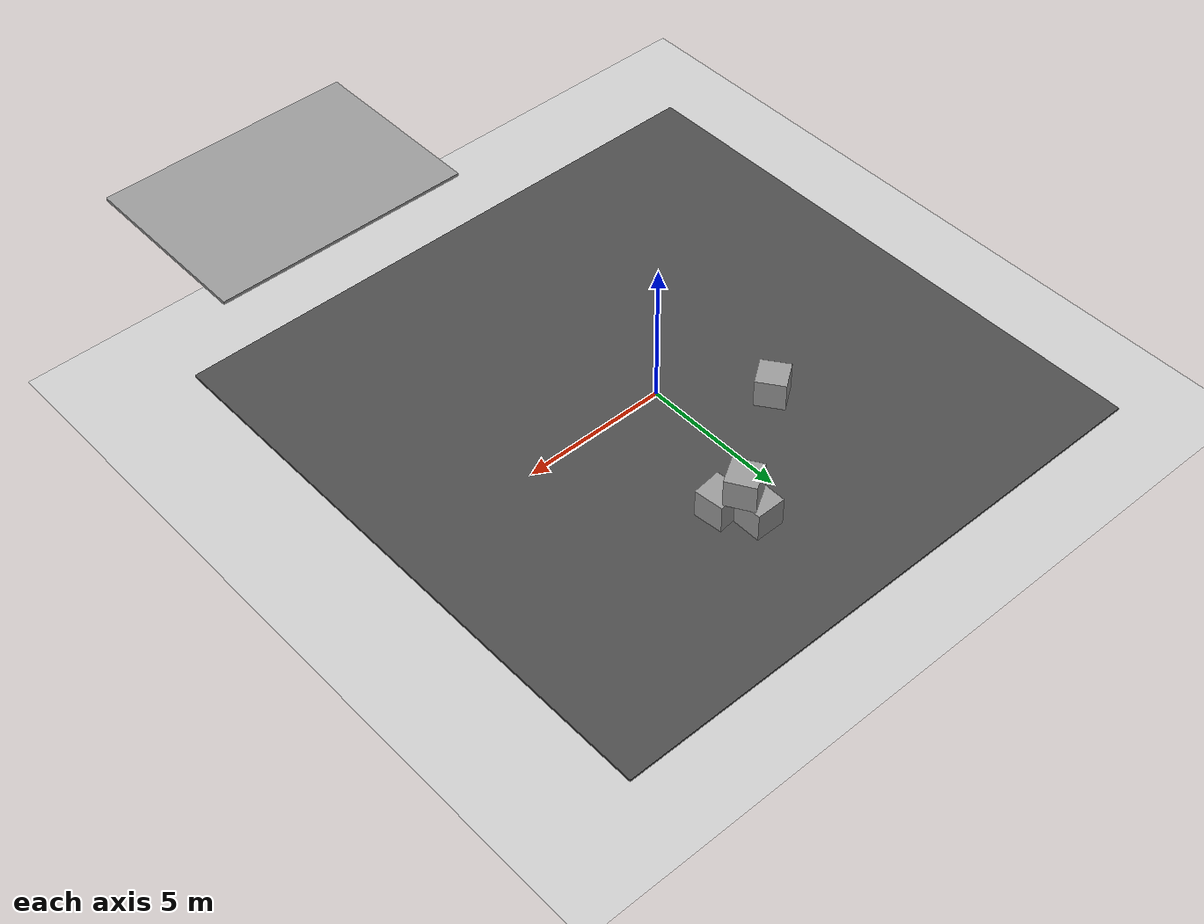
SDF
<sdf version="1.6">
 <world name="default">
  <model name="ground_plane">
   <static>1</static>
   <link name="link">
    <collision name="collision">
     <geometry><plane><normal>0 0 1</normal><size>100 100</size></plane></geometry>
     <surface><friction><ode><mu>100</mu><mu2>50</mu2></ode></friction></surface>
    </collision>
    <visual name="visual">
     <cast_shadows>0</cast_shadows>
     <geometry><plane><normal>0 0 1</normal><size>100 100</size></plane></geometry>
     <material>
      <script><uri>file://media/materials/scripts/gazebo.material</uri><name>Gazebo/Grey</name></script>
     </material>
    </visual>
   </link>
  </model>
  <model name="asphalt_plane">
   <static>1</static>
   <link name="link">
    <collision name="collision"><geometry><box><size>20 20 0.1</size></box></geometry></collision>
    <visual name="visual">
     <cast_shadows>0</cast_shadows>
     <geometry><box><size>20 20 0.1</size></box></geometry>
     <material>
      <script>
       <uri>model://asphalt_plane/materials/scripts</uri>
       <uri>model://asphalt_plane/materials/textures</uri>
       <name>vrc/asphalt</name>
      </script>
     </material>
    </visual>
   </link>
   <pose>0.058806 -0.094526 0 0 -0 0</pose>
  </model>
  <model name="simple_plane">
   <static>1</static>
   <link name="link">
    <collision name="collision"><geometry><box><size>8.02916 5.80556 0.1</size></box></geometry></collision>
    <visual name="visual">
     <cast_shadows>0</cast_shadows>
     <geometry><box><size>8.02916 5.80556 0.1</size></box></geometry>
     <material>
      <script><uri>file://media/materials/scripts/gazebo.material</uri><name>Gazebo/Grey</name></script>
     </material>
    </visual>
   </link>
   <pose>7.30034 -7.79717 7.45488 0 -0 0</pose>
  </model>
  <model name="unit_box_0">
   <pose>-2.49229 2.46601 0.55 0 -0 0.619039</pose>
   <link name="link">
    <inertial>
     <mass>1</mass>
     <inertia>
      <ixx>0.166667</ixx>
      <ixy>0</ixy>
      <ixz>0</ixz>
      <iyy>0.166667</iyy>
      <iyz>0</iyz>
      <izz>0.166667</izz>
     </inertia>
    </inertial>
    <collision name="collision"><geometry><box><size>1 1 1</size></box></geometry></collision>
    <visual name="visual">
     <geometry><box><size>1 1 1</size></box></geometry>
     <material>
      <script><name>Gazebo/Grey</name><uri>file://media/materials/scripts/gazebo.material</uri></script>
     </material>
    </visual>
   </link>
  </model>
  <model name="unit_box_2">
   <pose>2.01441 4.81675 0.549875 -1.8e-05 3e-06 0.110981</pose>
   <link name="link">
    <inertial>
     <mass>1</mass>
     <inertia>
      <ixx>0.166667</ixx>
      <ixy>0</ixy>
      <ixz>0</ixz>
      <iyy>0.166667</iyy>
      <iyz>0</iyz>
      <izz>0.166667</izz>
     </inertia>
    </inertial>
    <collision name="collision"><geometry><box><size>1 1 1</size></box></geometry></collision>
    <visual name="visual">
     <geometry><box><size>1 1 1</size></box></geometry>
     <material>
      <script><name>Gazebo/Grey</name><uri>file://media/materials/scripts/gazebo.material</uri></script>
     </material>
    </visual>
   </link>
  </model>
  <model name="unit_box_5">
   <pose>1.66565 5.43944 1.54985 -5e-06 1.2e-05 0.54404</pose>
   <link name="link">
    <inertial>
     <mass>1</mass>
     <inertia>
      <ixx>0.166667</ixx>
      <ixy>0</ixy>
      <ixz>0</ixz>
      <iyy>0.166667</iyy>
      <iyz>0</iyz>
      <izz>0.166667</izz>
     </inertia>
    </inertial>
    <collision name="collision"><geometry><box><size>1 1 1</size></box></geometry></collision>
    <visual name="visual">
     <geometry><box><size>1 1 1</size></box></geometry>
     <material>
      <script><name>Gazebo/Grey</name><uri>file://media/materials/scripts/gazebo.material</uri></script>
     </material>
    </visual>
   </link>
  </model>
  <model name="unit_box_6">
   <pose>1.39546 5.80679 0.549852 -1e-05 7e-06 0.000354</pose>
   <link name="link">
    <inertial>
     <mass>1</mass>
     <inertia>
      <ixx>0.166667</ixx>
      <ixy>0</ixy>
      <ixz>0</ixz>
      <iyy>0.166667</iyy>
      <iyz>0</iyz>
      <izz>0.166667</izz>
     </inertia>
    </inertial>
    <collision name="collision"><geometry><box><size>1 1 1</size></box></geometry></collision>
    <visual name="visual">
     <geometry><box><size>1 1 1</size></box></geometry>
     <material>
      <script><name>Gazebo/Grey</name><uri>file://media/materials/scripts/gazebo.material</uri></script>
     </material>
    </visual>
   </link>
  </model>
 </world>
</sdf>
